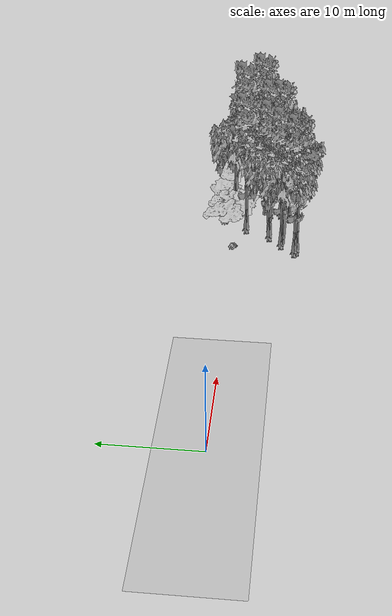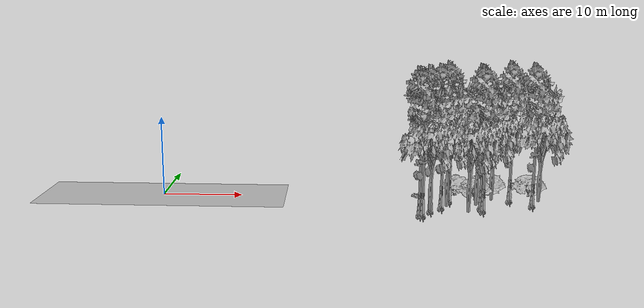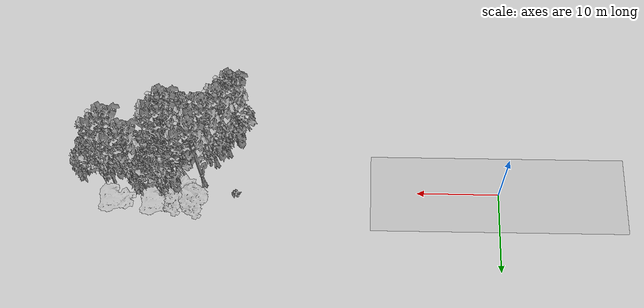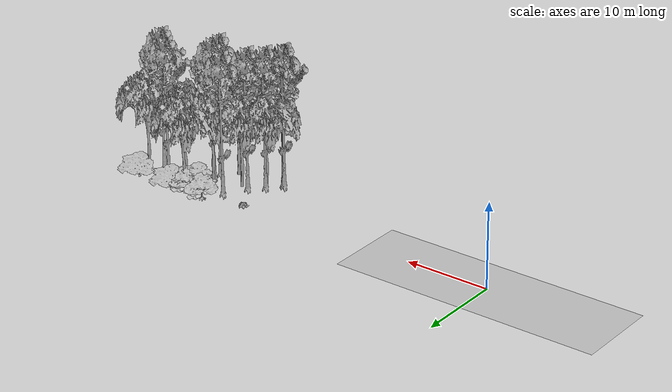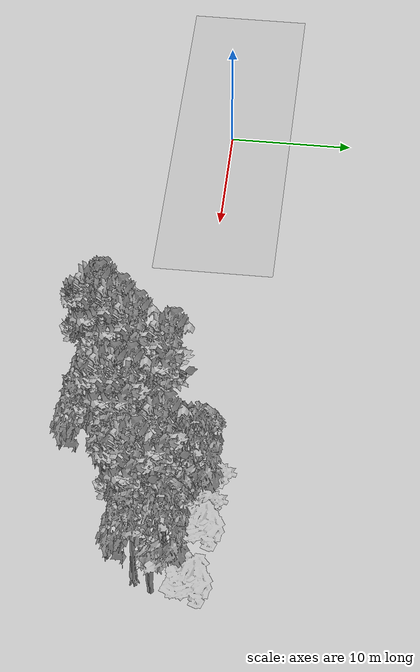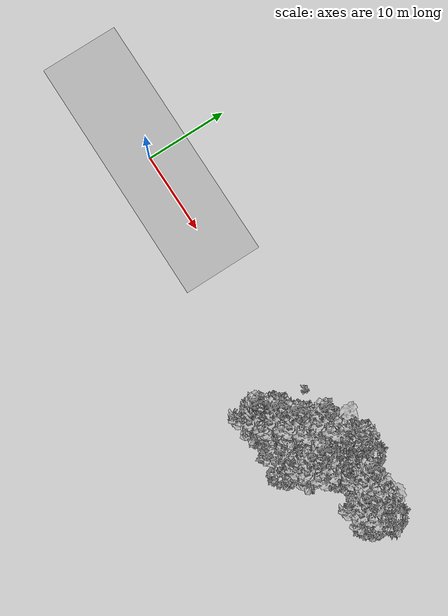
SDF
<sdf version="1.7">
 <world name="default">
  <model name="ground_plane">
   <static>1</static>
   <link name="link">
    <collision name="collision">
     <pose>-50 0 0 0 -0 0</pose>
     <geometry><plane><normal>0 0 1</normal><size>100 100</size></plane></geometry>
     <surface><contact><ode><min_depth>0.01</min_depth><max_vel>0</max_vel></ode></contact></surface>
    </collision>
    <visual name="grass">
     <cast_shadows>0</cast_shadows>
     <geometry>
      <mesh>
       <scale>0.5814285714285714 0.18142857142857144 0.1</scale>
       <uri>file://grass_plane/meshes/grass_plane.dae</uri>
      </mesh>
     </geometry>
    </visual>
   </link>
  </model>
  <model name="Tree 0">
   <static>1</static>
   <pose>33.289444481673556 -5.185459640180708 0 1.57079 -0 0</pose>
   <link name="link">
    <collision name="collision">
     <geometry><mesh><scale>3.5 5 3.5</scale><uri>model://tree_2/meshes/tree_2.obj</uri></mesh></geometry>
    </collision>
    <visual name="visual">
     <geometry><mesh><scale>3.5 5 3.5</scale><uri>model://tree_2/meshes/tree_2.obj</uri></mesh></geometry>
    </visual>
   </link>
  </model>
  <model name="Tree 15">
   <static>1</static>
   <pose>41.57837490177708 1.7691573282104862 0 1.57079 -0 0</pose>
   <link name="link">
    <collision name="collision">
     <geometry><mesh><scale>3 2 3</scale><uri>model://tree_3/meshes/tree_3.obj</uri></mesh></geometry>
    </collision>
    <visual name="visual">
     <geometry><mesh><scale>3 2 3</scale><uri>model://tree_3/meshes/tree_3.obj</uri></mesh></geometry>
    </visual>
   </link>
  </model>
  <model name="Tree 126">
   <static>1</static>
   <pose>39.70029251605453 -4.628002350281582 0 1.57079 -0 0</pose>
   <link name="link">
    <collision name="collision">
     <geometry><mesh><scale>3.5 5 3.5</scale><uri>model://tree_9/meshes/tree_9.obj</uri></mesh></geometry>
    </collision>
    <visual name="visual">
     <geometry><mesh><scale>3.5 5 3.5</scale><uri>model://tree_9/meshes/tree_9.obj</uri></mesh></geometry>
    </visual>
   </link>
  </model>
  <model name="Tree 143">
   <static>1</static>
   <pose>46.62578196189162 1.4378565138422736 0 1.57079 -0 0</pose>
   <link name="link">
    <collision name="collision">
     <geometry><mesh><scale>3 2 3</scale><uri>model://tree_3/meshes/tree_3.obj</uri></mesh></geometry>
    </collision>
    <visual name="visual">
     <geometry><mesh><scale>3 2 3</scale><uri>model://tree_3/meshes/tree_3.obj</uri></mesh></geometry>
    </visual>
   </link>
  </model>
  <model name="Tree 155">
   <static>1</static>
   <pose>40.48979243530704 0.6541531923312487 0 1.57079 -0 0</pose>
   <link name="link">
    <collision name="collision">
     <geometry><mesh><scale>3.5 5 3.5</scale><uri>model://tree_2/meshes/tree_2.obj</uri></mesh></geometry>
    </collision>
    <visual name="visual">
     <geometry><mesh><scale>3.5 5 3.5</scale><uri>model://tree_2/meshes/tree_2.obj</uri></mesh></geometry>
    </visual>
   </link>
  </model>
  <model name="Tree 165">
   <static>1</static>
   <pose>37.13798316681708 1.6535351725292387 0 1.57079 -0 0</pose>
   <link name="link">
    <collision name="collision">
     <geometry><mesh><scale>4 2.5 4</scale><uri>model://tree_1/meshes/tree_1.obj</uri></mesh></geometry>
    </collision>
    <visual name="visual">
     <geometry><mesh><scale>4 2.5 4</scale><uri>model://tree_1/meshes/tree_1.obj</uri></mesh></geometry>
    </visual>
   </link>
  </model>
  <model name="Tree 166">
   <static>1</static>
   <pose>36.21051674276636 -0.8884737561989304 0 1.57079 -0 0</pose>
   <link name="link">
    <collision name="collision">
     <geometry><mesh><scale>3.5 5 3.5</scale><uri>model://tree_9/meshes/tree_9.obj</uri></mesh></geometry>
    </collision>
    <visual name="visual">
     <geometry><mesh><scale>3.5 5 3.5</scale><uri>model://tree_9/meshes/tree_9.obj</uri></mesh></geometry>
    </visual>
   </link>
  </model>
  <model name="Tree 171">
   <static>1</static>
   <pose>33.390445813053205 -4.978942849771535 0 1.57079 -0 0</pose>
   <link name="link">
    <collision name="collision">
     <geometry><mesh><scale>3.5 5 3.5</scale><uri>model://tree_9/meshes/tree_9.obj</uri></mesh></geometry>
    </collision>
    <visual name="visual">
     <geometry><mesh><scale>3.5 5 3.5</scale><uri>model://tree_9/meshes/tree_9.obj</uri></mesh></geometry>
    </visual>
   </link>
  </model>
  <model name="Tree 232">
   <static>1</static>
   <pose>47.16065262697096 -0.9553978208215064 0 1.57079 -0 0</pose>
   <link name="link">
    <collision name="collision">
     <geometry><mesh><scale>3.5 5 3.5</scale><uri>model://tree_2/meshes/tree_2.obj</uri></mesh></geometry>
    </collision>
    <visual name="visual">
     <geometry><mesh><scale>3.5 5 3.5</scale><uri>model://tree_2/meshes/tree_2.obj</uri></mesh></geometry>
    </visual>
   </link>
  </model>
  <model name="Tree 238">
   <static>1</static>
   <pose>46.124483961917576 -2.3019436699026468 0 1.57079 -0 0</pose>
   <link name="link">
    <collision name="collision">
     <geometry><mesh><scale>3.5 5 3.5</scale><uri>model://tree_9/meshes/tree_9.obj</uri></mesh></geometry>
    </collision>
    <visual name="visual">
     <geometry><mesh><scale>3.5 5 3.5</scale><uri>model://tree_9/meshes/tree_9.obj</uri></mesh></geometry>
    </visual>
   </link>
  </model>
  <model name="Tree 260">
   <static>1</static>
   <pose>35.470594133535755 -3.480890908863712 0 1.57079 -0 0</pose>
   <link name="link">
    <collision name="collision">
     <geometry><mesh><scale>3.5 5 3.5</scale><uri>model://tree_2/meshes/tree_2.obj</uri></mesh></geometry>
    </collision>
    <visual name="visual">
     <geometry><mesh><scale>3.5 5 3.5</scale><uri>model://tree_2/meshes/tree_2.obj</uri></mesh></geometry>
    </visual>
   </link>
  </model>
  <model name="Tree 266">
   <static>1</static>
   <pose>37.73418591941798 -5.654024691349509 0 1.57079 -0 0</pose>
   <link name="link">
    <collision name="collision">
     <geometry><mesh><scale>3.5 5 3.5</scale><uri>model://tree_2/meshes/tree_2.obj</uri></mesh></geometry>
    </collision>
    <visual name="visual">
     <geometry><mesh><scale>3.5 5 3.5</scale><uri>model://tree_2/meshes/tree_2.obj</uri></mesh></geometry>
    </visual>
   </link>
  </model>
  <model name="Tree 291">
   <static>1</static>
   <pose>32.258774049478504 -6.747956206750246 0 1.57079 -0 0</pose>
   <link name="link">
    <collision name="collision">
     <geometry><mesh><scale>3.5 5 3.5</scale><uri>model://tree_9/meshes/tree_9.obj</uri></mesh></geometry>
    </collision>
    <visual name="visual">
     <geometry><mesh><scale>3.5 5 3.5</scale><uri>model://tree_9/meshes/tree_9.obj</uri></mesh></geometry>
    </visual>
   </link>
  </model>
  <model name="Tree 300">
   <static>1</static>
   <pose>41.407794101253245 -0.6838410503416927 0 1.57079 -0 0</pose>
   <link name="link">
    <collision name="collision">
     <geometry><mesh><scale>3.5 5 3.5</scale><uri>model://tree_2/meshes/tree_2.obj</uri></mesh></geometry>
    </collision>
    <visual name="visual">
     <geometry><mesh><scale>3.5 5 3.5</scale><uri>model://tree_2/meshes/tree_2.obj</uri></mesh></geometry>
    </visual>
   </link>
  </model>
  <model name="Tree 341">
   <static>1</static>
   <pose>34.85952444860807 -3.5844786674711386 0 1.57079 -0 0</pose>
   <link name="link">
    <collision name="collision">
     <geometry><mesh><scale>3.5 5 3.5</scale><uri>model://tree_9/meshes/tree_9.obj</uri></mesh></geometry>
    </collision>
    <visual name="visual">
     <geometry><mesh><scale>3.5 5 3.5</scale><uri>model://tree_9/meshes/tree_9.obj</uri></mesh></geometry>
    </visual>
   </link>
  </model>
  <model name="Tree 380">
   <static>1</static>
   <pose>31.945288746315626 -6.507186908466551 0 1.57079 -0 0</pose>
   <link name="link">
    <collision name="collision">
     <geometry><mesh><scale>3.5 5 3.5</scale><uri>model://tree_9/meshes/tree_9.obj</uri></mesh></geometry>
    </collision>
    <visual name="visual">
     <geometry><mesh><scale>3.5 5 3.5</scale><uri>model://tree_9/meshes/tree_9.obj</uri></mesh></geometry>
    </visual>
   </link>
  </model>
  <model name="Tree 426">
   <static>1</static>
   <pose>39.141333437924985 -2.841278782575994 0 1.57079 -0 0</pose>
   <link name="link">
    <collision name="collision">
     <geometry><mesh><scale>3.5 5 3.5</scale><uri>model://tree_2/meshes/tree_2.obj</uri></mesh></geometry>
    </collision>
    <visual name="visual">
     <geometry><mesh><scale>3.5 5 3.5</scale><uri>model://tree_2/meshes/tree_2.obj</uri></mesh></geometry>
    </visual>
   </link>
  </model>
  <model name="Tree 444">
   <static>1</static>
   <pose>39.73812955010524 1.289546913011037 0 1.57079 -0 0</pose>
   <link name="link">
    <collision name="collision">
     <geometry><mesh><scale>4 2.5 4</scale><uri>model://tree_1/meshes/tree_1.obj</uri></mesh></geometry>
    </collision>
    <visual name="visual">
     <geometry><mesh><scale>4 2.5 4</scale><uri>model://tree_1/meshes/tree_1.obj</uri></mesh></geometry>
    </visual>
   </link>
  </model>
  <model name="Tree 456">
   <static>1</static>
   <pose>43.78229885113278 -0.3759820819434072 0 1.57079 -0 0</pose>
   <link name="link">
    <collision name="collision">
     <geometry><mesh><scale>3.5 5 3.5</scale><uri>model://tree_9/meshes/tree_9.obj</uri></mesh></geometry>
    </collision>
    <visual name="visual">
     <geometry><mesh><scale>3.5 5 3.5</scale><uri>model://tree_9/meshes/tree_9.obj</uri></mesh></geometry>
    </visual>
   </link>
  </model>
  <model name="Tree 483">
   <static>1</static>
   <pose>39.66523264270003 -3.4760049676988665 0 1.57079 -0 0</pose>
   <link name="link">
    <collision name="collision">
     <geometry><mesh><scale>3.5 5 3.5</scale><uri>model://tree_9/meshes/tree_9.obj</uri></mesh></geometry>
    </collision>
    <visual name="visual">
     <geometry><mesh><scale>3.5 5 3.5</scale><uri>model://tree_9/meshes/tree_9.obj</uri></mesh></geometry>
    </visual>
   </link>
  </model>
  <model name="Tree 487">
   <static>1</static>
   <pose>39.49099078154795 -0.41651781010261324 0 1.57079 -0 0</pose>
   <link name="link">
    <collision name="collision">
     <geometry><mesh><scale>3 2 3</scale><uri>model://tree_3/meshes/tree_3.obj</uri></mesh></geometry>
    </collision>
    <visual name="visual">
     <geometry><mesh><scale>3 2 3</scale><uri>model://tree_3/meshes/tree_3.obj</uri></mesh></geometry>
    </visual>
   </link>
  </model>
  <model name="Bush 1">
   <static>1</static>
   <pose>32.207444891045625 0.30520923679668144 0 1.57079 -0 0</pose>
   <link name="link">
    <collision name="collision">
     <geometry><mesh><scale>2 2 2</scale><uri>model://bush_2/meshes/bush_2.obj</uri></mesh></geometry>
     <surface><contact><collide_without_contact>false</collide_without_contact></contact></surface>
    </collision>
    <visual name="visual">
     <geometry><mesh><scale>2 2 2</scale><uri>model://bush_2/meshes/bush_2.obj</uri></mesh></geometry>
    </visual>
   </link>
  </model>
 </world>
</sdf>
